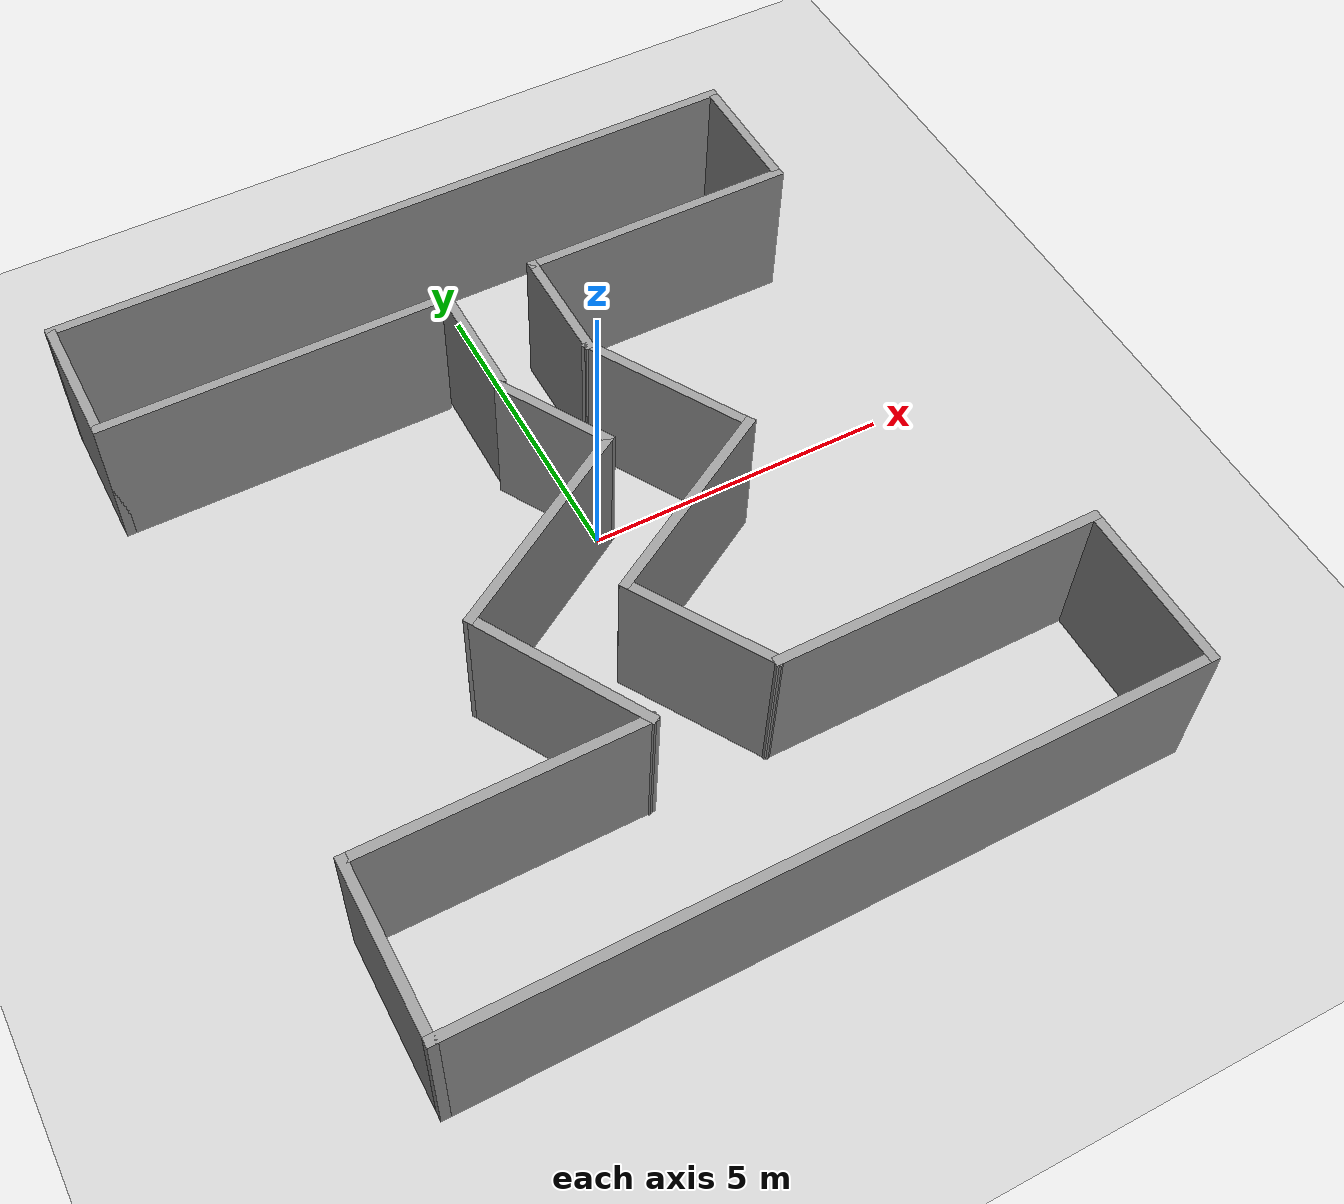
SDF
<sdf version="1.7">
 <world name="default">
  <light name="sun" type="directional">
   <pose>0 0 10 0 -0 0</pose>
   <diffuse>0.8 0.8 0.8 1</diffuse>
   <specular>0.2 0.2 0.2 1</specular>
   <attenuation>
    <range>1000</range>
    <constant>0.9</constant>
    <linear>0.01</linear>
    <quadratic>0.001</quadratic>
   </attenuation>
   <direction>-0.5 0.1 -0.9</direction>
   <spot><inner_angle>0</inner_angle><outer_angle>0</outer_angle><falloff>0</falloff></spot>
  </light>
  <model name="ground_plane">
   <static>1</static>
   <link name="link">
    <collision name="collision">
     <geometry><plane><normal>0 0 1</normal><size>100 100</size></plane></geometry>
     <surface>
      <contact><collide_bitmask>65535</collide_bitmask></contact>
      <friction><ode><mu>100</mu><mu2>50</mu2></ode></friction>
     </surface>
    </collision>
    <visual name="visual">
     <cast_shadows>0</cast_shadows>
     <geometry><plane><normal>0 0 1</normal><size>100 100</size></plane></geometry>
     <material>
      <script><uri>file://media/materials/scripts/gazebo.material</uri><name>Gazebo/Grey</name></script>
     </material>
    </visual>
   </link>
  </model>
  <gravity>0 0 -9.8</gravity>
  <magnetic_field>6e-06 2.3e-05 -4.2e-05</magnetic_field>
  <atmosphere type="adiabatic"/>
  <physics type="ode">
   <max_step_size>0.001</max_step_size>
   <real_time_factor>1</real_time_factor>
   <real_time_update_rate>1000</real_time_update_rate>
  </physics>
  <scene><ambient>0.4 0.4 0.4 1</ambient><background>0.7 0.7 0.7 1</background><shadows>1</shadows></scene>
  <spherical_coordinates>
   <surface_model>EARTH_WGS84</surface_model>
   <latitude_deg>0</latitude_deg>
   <longitude_deg>0</longitude_deg>
   <elevation>0</elevation>
   <heading_deg>0</heading_deg>
  </spherical_coordinates>
  <model name="paper2">
   <pose>-0.393429 -0.698209 0 0 -0 0</pose>
   <link name="Wall_15">
    <collision name="Wall_15_Collision">
     <geometry><box><size>5.25 0.15 2.5</size></box></geometry>
     <pose>0 0 1.25 0 -0 0</pose>
    </collision>
    <visual name="Wall_15_Visual">
     <pose>0 0 1.25 0 -0 0</pose>
     <geometry><box><size>5.25 0.15 2.5</size></box></geometry>
     <material>
      <script><uri>file://media/materials/scripts/gazebo.material</uri><name>Gazebo/Grey</name></script>
      <ambient>1 1 1 1</ambient>
     </material>
     <meta><layer>0</layer></meta>
    </visual>
    <pose>3.34015 -3.70156 0 0 -0 0</pose>
   </link>
   <link name="Wall_16">
    <collision name="Wall_16_Collision">
     <geometry><box><size>2.75 0.15 2.5</size></box></geometry>
     <pose>0 0 1.25 0 -0 0</pose>
    </collision>
    <visual name="Wall_16_Visual">
     <pose>0 0 1.25 0 -0 0</pose>
     <geometry><box><size>2.75 0.15 2.5</size></box></geometry>
     <material>
      <script><uri>file://media/materials/scripts/gazebo.material</uri><name>Gazebo/Grey</name></script>
      <ambient>1 1 1 1</ambient>
     </material>
     <meta><layer>0</layer></meta>
    </visual>
    <pose>5.89015 -5.00157 0 0 -0 -1.5708</pose>
   </link>
   <link name="Wall_17">
    <collision name="Wall_17_Collision">
     <geometry><box><size>11.5 0.15 2.5</size></box></geometry>
     <pose>0 0 1.25 0 -0 0</pose>
    </collision>
    <visual name="Wall_17_Visual">
     <pose>0 0 1.25 0 -0 0</pose>
     <geometry><box><size>11.5 0.15 2.5</size></box></geometry>
     <material>
      <script><uri>file://media/materials/scripts/gazebo.material</uri><name>Gazebo/Grey</name></script>
      <ambient>1 1 1 1</ambient>
     </material>
     <meta><layer>0</layer></meta>
    </visual>
    <pose>0.215149 -6.30157 0 0 -0 3.14159</pose>
   </link>
   <link name="Wall_18">
    <collision name="Wall_18_Collision">
     <geometry><box><size>2.75 0.15 2.5</size></box></geometry>
     <pose>0 0 1.25 0 -0 0</pose>
    </collision>
    <visual name="Wall_18_Visual">
     <pose>0 0 1.25 0 -0 0</pose>
     <geometry><box><size>2.75 0.15 2.5</size></box></geometry>
     <material>
      <script><uri>file://media/materials/scripts/gazebo.material</uri><name>Gazebo/Grey</name></script>
      <ambient>1 1 1 1</ambient>
     </material>
     <meta><layer>0</layer></meta>
    </visual>
    <pose>-5.45985 -5.00157 0 0 -0 1.5708</pose>
   </link>
   <link name="Wall_19">
    <collision name="Wall_19_Collision">
     <geometry><box><size>4.5 0.15 2.5</size></box></geometry>
     <pose>0 0 1.25 0 -0 0</pose>
    </collision>
    <visual name="Wall_19_Visual">
     <pose>0 0 1.25 0 -0 0</pose>
     <geometry><box><size>4.5 0.15 2.5</size></box></geometry>
     <material>
      <script><uri>file://media/materials/scripts/gazebo.material</uri><name>Gazebo/Grey</name></script>
      <ambient>1 1 1 1</ambient>
     </material>
     <meta><layer>0</layer></meta>
    </visual>
    <pose>-3.28485 -3.70156 0 0 -0 0</pose>
   </link>
   <link name="Wall_29">
    <collision name="Wall_29_Collision">
     <geometry><box><size>3 0.15 2.5</size></box></geometry>
     <pose>0 0 1.25 0 -0 0</pose>
    </collision>
    <visual name="Wall_29_Visual">
     <pose>0 0 1.25 0 -0 0</pose>
     <geometry><box><size>3 0.15 2.5</size></box></geometry>
     <material>
      <script><uri>file://media/materials/scripts/gazebo.material</uri><name>Gazebo/Grey</name></script>
      <ambient>1 1 1 1</ambient>
     </material>
     <meta><layer>0</layer></meta>
    </visual>
    <pose>-1.82235 -2.46748 0 0 -0 2.0944</pose>
   </link>
   <link name="Wall_32">
    <collision name="Wall_32_Collision">
     <geometry><box><size>2.4884 0.15 2.5</size></box></geometry>
     <pose>0 0 1.25 0 -0 0</pose>
    </collision>
    <visual name="Wall_32_Visual">
     <pose>0 0 1.25 0 -0 0</pose>
     <geometry><box><size>2.4884 0.15 2.5</size></box></geometry>
     <material>
      <script><uri>file://media/materials/scripts/gazebo.material</uri><name>Gazebo/Grey</name></script>
      <ambient>1 1 1 1</ambient>
     </material>
     <meta><layer>0</layer></meta>
    </visual>
    <pose>0.186211 -2.70042 0 0 -0 2.1136</pose>
   </link>
   <link name="Wall_37">
    <collision name="Wall_37_Collision">
     <geometry><box><size>3.75117 0.15 2.5</size></box></geometry>
     <pose>0 0 1.25 0 -0 0</pose>
    </collision>
    <visual name="Wall_37_Visual">
     <pose>0 0 1.25 0 -0 0</pose>
     <geometry><box><size>3.75117 0.15 2.5</size></box></geometry>
     <material>
      <script><uri>file://media/materials/scripts/gazebo.material</uri><name>Gazebo/Grey</name></script>
      <ambient>1 1 1 1</ambient>
     </material>
     <meta><layer>0</layer></meta>
    </visual>
    <pose>-0.999005 -0.293555 0 0 -0 0.549149</pose>
   </link>
   <link name="Wall_38">
    <collision name="Wall_38_Collision">
     <geometry><box><size>2 0.15 2.5</size></box></geometry>
     <pose>0 0 1.25 0 -0 0</pose>
    </collision>
    <visual name="Wall_38_Visual">
     <pose>0 0 1.25 0 -0 0</pose>
     <geometry><box><size>2 0.15 2.5</size></box></geometry>
     <material>
      <script><uri>file://media/materials/scripts/gazebo.material</uri><name>Gazebo/Grey</name></script>
      <ambient>1 1 1 1</ambient>
     </material>
     <meta><layer>0</layer></meta>
    </visual>
    <pose>0.074341 1.44735 0 0 -0 2.0944</pose>
   </link>
   <link name="Wall_40">
    <collision name="Wall_40_Collision">
     <geometry><box><size>3.5 0.15 2.5</size></box></geometry>
     <pose>0 0 1.25 0 -0 0</pose>
    </collision>
    <visual name="Wall_40_Visual">
     <pose>0 0 1.25 0 -0 0</pose>
     <geometry><box><size>3.5 0.15 2.5</size></box></geometry>
     <material>
      <script><uri>file://media/materials/scripts/gazebo.material</uri><name>Gazebo/Grey</name></script>
      <ambient>1 1 1 1</ambient>
     </material>
     <meta><layer>0</layer></meta>
    </visual>
    <pose>1.03287 -0.855206 0 0 -0 0.523599</pose>
   </link>
   <link name="Wall_47">
    <collision name="Wall_47_Collision">
     <geometry><box><size>2.75 0.15 2.5</size></box></geometry>
     <pose>0 0 1.25 0 -0 0</pose>
    </collision>
    <visual name="Wall_47_Visual">
     <pose>0 0 1.25 0 -0 0</pose>
     <geometry><box><size>2.75 0.15 2.5</size></box></geometry>
     <material>
      <script><uri>file://media/materials/scripts/gazebo.material</uri><name>Gazebo/Grey</name></script>
      <ambient>1 1 1 1</ambient>
     </material>
     <meta><layer>0</layer></meta>
    </visual>
    <pose>1.75985 1.22573 0 0 -0 2.0944</pose>
   </link>
   <link name="Wall_58">
    <collision name="Wall_58_Collision">
     <geometry><box><size>2 0.15 2.5</size></box></geometry>
     <pose>0 0 1.25 0 -0 0</pose>
    </collision>
    <visual name="Wall_58_Visual">
     <pose>0 0 1.25 0 -0 0</pose>
     <geometry><box><size>2 0.15 2.5</size></box></geometry>
     <material>
      <script><uri>file://media/materials/scripts/gazebo.material</uri><name>Gazebo/Grey</name></script>
      <ambient>1 1 1 1</ambient>
     </material>
     <meta><layer>0</layer></meta>
    </visual>
    <pose>1.10985 3.27657 0 0 -0 1.5708</pose>
   </link>
   <link name="Wall_59">
    <collision name="Wall_59_Collision">
     <geometry><box><size>4.5 0.15 2.5</size></box></geometry>
     <pose>0 0 1.25 0 -0 0</pose>
    </collision>
    <visual name="Wall_59_Visual">
     <pose>0 0 1.25 0 -0 0</pose>
     <geometry><box><size>4.5 0.15 2.5</size></box></geometry>
     <material>
      <script><uri>file://media/materials/scripts/gazebo.material</uri><name>Gazebo/Grey</name></script>
      <ambient>1 1 1 1</ambient>
     </material>
     <meta><layer>0</layer></meta>
    </visual>
    <pose>3.28485 4.20157 0 0 -0 0</pose>
   </link>
   <link name="Wall_60">
    <collision name="Wall_60_Collision">
     <geometry><box><size>2.25 0.15 2.5</size></box></geometry>
     <pose>0 0 1.25 0 -0 0</pose>
    </collision>
    <visual name="Wall_60_Visual">
     <pose>0 0 1.25 0 -0 0</pose>
     <geometry><box><size>2.25 0.15 2.5</size></box></geometry>
     <material>
      <script><uri>file://media/materials/scripts/gazebo.material</uri><name>Gazebo/Grey</name></script>
      <ambient>1 1 1 1</ambient>
     </material>
     <meta><layer>0</layer></meta>
    </visual>
    <pose>5.45985 5.25157 0 0 -0 1.5708</pose>
   </link>
   <link name="Wall_61">
    <collision name="Wall_61_Collision">
     <geometry><box><size>11.5 0.15 2.5</size></box></geometry>
     <pose>0 0 1.25 0 -0 0</pose>
    </collision>
    <visual name="Wall_61_Visual">
     <pose>0 0 1.25 0 -0 0</pose>
     <geometry><box><size>11.5 0.15 2.5</size></box></geometry>
     <material>
      <script><uri>file://media/materials/scripts/gazebo.material</uri><name>Gazebo/Grey</name></script>
      <ambient>1 1 1 1</ambient>
     </material>
     <meta><layer>0</layer></meta>
    </visual>
    <pose>-0.215149 6.30157 0 0 -0 3.14159</pose>
   </link>
   <link name="Wall_62">
    <collision name="Wall_62_Collision">
     <geometry><box><size>2.25 0.15 2.5</size></box></geometry>
     <pose>0 0 1.25 0 -0 0</pose>
    </collision>
    <visual name="Wall_62_Visual">
     <pose>0 0 1.25 0 -0 0</pose>
     <geometry><box><size>2.25 0.15 2.5</size></box></geometry>
     <material>
      <script><uri>file://media/materials/scripts/gazebo.material</uri><name>Gazebo/Grey</name></script>
      <ambient>1 1 1 1</ambient>
     </material>
     <meta><layer>0</layer></meta>
    </visual>
    <pose>-5.89015 5.25157 0 0 -0 -1.5708</pose>
   </link>
   <link name="Wall_63">
    <collision name="Wall_63_Collision">
     <geometry><box><size>5.5 0.15 2.5</size></box></geometry>
     <pose>0 0 1.25 0 -0 0</pose>
    </collision>
    <visual name="Wall_63_Visual">
     <pose>0 0 1.25 0 -0 0</pose>
     <geometry><box><size>5.5 0.15 2.5</size></box></geometry>
     <material>
      <script><uri>file://media/materials/scripts/gazebo.material</uri><name>Gazebo/Grey</name></script>
      <ambient>1 1 1 1</ambient>
     </material>
     <meta><layer>0</layer></meta>
    </visual>
    <pose>-3.21515 4.20157 0 0 -0 0</pose>
   </link>
   <link name="Wall_74">
    <collision name="Wall_74_Collision">
     <geometry><box><size>2 0.15 2.5</size></box></geometry>
     <pose>0 0 1.25 0 -0 0</pose>
    </collision>
    <visual name="Wall_74_Visual">
     <pose>0 0 1.25 0 -0 0</pose>
     <geometry><box><size>2 0.15 2.5</size></box></geometry>
     <material>
      <script><uri>file://media/materials/scripts/gazebo.material</uri><name>Gazebo/Grey</name></script>
      <ambient>1 1 1 1</ambient>
     </material>
     <meta><layer>0</layer></meta>
    </visual>
    <pose>-0.351699 3.28848 0 0 -0 -1.5708</pose>
   </link>
   <static>1</static>
  </model>
 </world>
</sdf>
